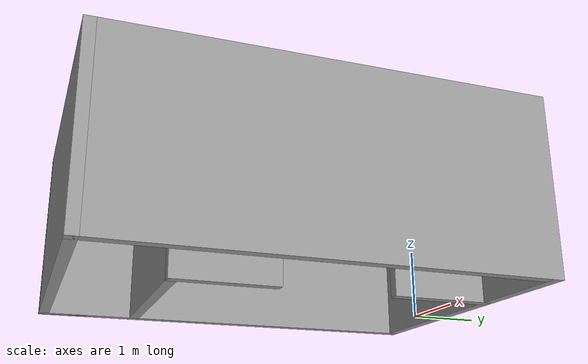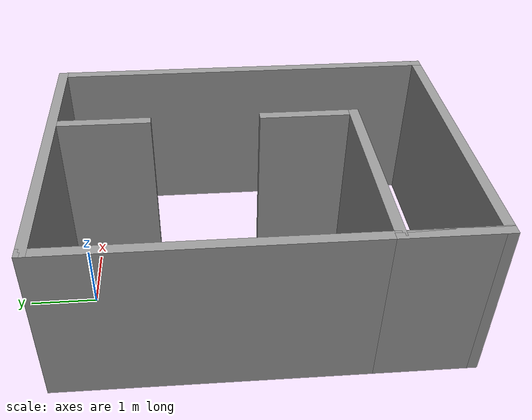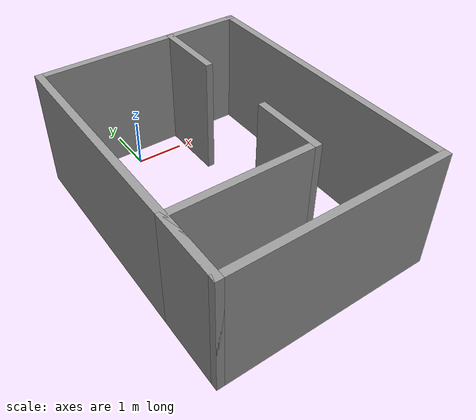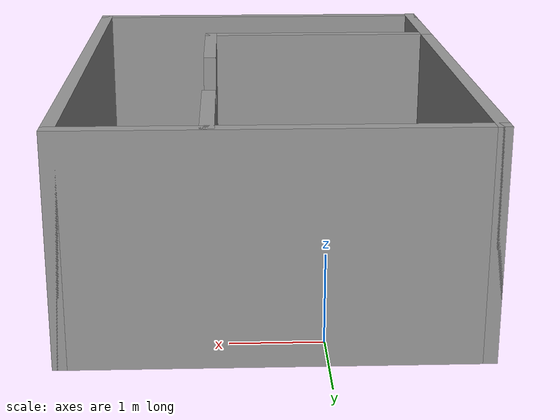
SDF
<?xml version='1.0'?>
<sdf version='1.6'>
  <model name='proj1_room'>
    <pose frame=''>0.530561 -2.47107 0 0 -0 0</pose>
    <link name='Wall_33'>
      <collision name='Wall_33_Collision'>
        <geometry>
          <box>
            <size>4.5 0.15 2.5</size>
          </box>
        </geometry>
        <pose frame=''>0 0 1.25 0 -0 0</pose>
      </collision>
      <visual name='Wall_33_Visual'>
        <pose frame=''>0 0 1.25 0 -0 0</pose>
        <geometry>
          <box>
            <size>4.5 0.15 2.5</size>
          </box>
        </geometry>
        <material>
          <script>
            <uri>file://media/materials/scripts/gazebo.material</uri>
            <name>Gazebo/Grey</name>
          </script>
          <ambient>0.333333 0.341176 0.32549 1</ambient>
        </material>
        <meta>
          <layer>0</layer>
        </meta>
      </visual>
      <pose frame=''>0 2.925 0 0 -0 0</pose>
    </link>
    <link name='Wall_41'>
      <collision name='Wall_41_Collision'>
        <geometry>
          <box>
            <size>6 0.15 2.5</size>
          </box>
        </geometry>
        <pose frame=''>0 0 1.25 0 -0 0</pose>
      </collision>
      <visual name='Wall_41_Visual'>
        <pose frame=''>0 0 1.25 0 -0 0</pose>
        <geometry>
          <box>
            <size>6 0.15 2.5</size>
          </box>
        </geometry>
        <material>
          <script>
            <uri>file://media/materials/scripts/gazebo.material</uri>
            <name>Gazebo/Grey</name>
          </script>
          <ambient>0.333333 0.341176 0.32549 1</ambient>
        </material>
        <meta>
          <layer>0</layer>
        </meta>
      </visual>
      <pose frame=''>2.175 0 0 0 -0 -1.5708</pose>
    </link>
    <link name='Wall_42'>
      <collision name='Wall_42_Collision'>
        <geometry>
          <box>
            <size>4.5 0.15 2.5</size>
          </box>
        </geometry>
        <pose frame=''>0 0 1.25 0 -0 0</pose>
      </collision>
      <visual name='Wall_42_Visual'>
        <pose frame=''>0 0 1.25 0 -0 0</pose>
        <geometry>
          <box>
            <size>4.5 0.15 2.5</size>
          </box>
        </geometry>
        <material>
          <script>
            <uri>file://media/materials/scripts/gazebo.material</uri>
            <name>Gazebo/Grey</name>
          </script>
          <ambient>0.333333 0.341176 0.32549 1</ambient>
        </material>
        <meta>
          <layer>0</layer>
        </meta>
      </visual>
      <pose frame=''>0 -2.925 0 0 -0 3.14159</pose>
    </link>
    <link name='Wall_43'>
      <collision name='Wall_43_Collision'>
        <geometry>
          <box>
            <size>6 0.15 2.5</size>
          </box>
        </geometry>
        <pose frame=''>0 0 1.25 0 -0 0</pose>
      </collision>
      <visual name='Wall_43_Visual'>
        <pose frame=''>0 0 1.25 0 -0 0</pose>
        <geometry>
          <box>
            <size>6 0.15 2.5</size>
          </box>
        </geometry>
        <material>
          <script>
            <uri>file://media/materials/scripts/gazebo.material</uri>
            <name>Gazebo/Grey</name>
          </script>
          <ambient>0.333333 0.341176 0.32549 1</ambient>
        </material>
        <meta>
          <layer>0</layer>
        </meta>
      </visual>
      <pose frame=''>-2.175 0 0 0 -0 1.5708</pose>
    </link>
    <link name='Wall_45'>
      <collision name='Wall_45_Collision'>
        <geometry>
          <box>
            <size>1.5 0.15 2.5</size>
          </box>
        </geometry>
        <pose frame=''>0 0 1.25 0 -0 0</pose>
      </collision>
      <visual name='Wall_45_Visual'>
        <pose frame=''>0 0 1.25 0 -0 0</pose>
        <geometry>
          <box>
            <size>1.5 0.15 2.5</size>
          </box>
        </geometry>
        <material>
          <script>
            <uri>file://media/materials/scripts/gazebo.material</uri>
            <name>Gazebo/Grey</name>
          </script>
          <ambient>0.333333 0.341176 0.32549 1</ambient>
        </material>
        <meta>
          <layer>0</layer>
        </meta>
      </visual>
      <pose frame=''>-2.175 -2.25 0 0 -0 1.5708</pose>
    </link>
    <link name='Wall_46'>
      <collision name='Wall_46_Collision'>
        <geometry>
          <box>
            <size>3 0.15 2.5</size>
          </box>
        </geometry>
        <pose frame=''>0 0 1.25 0 -0 0</pose>
      </collision>
      <visual name='Wall_46_Visual'>
        <pose frame=''>0 0 1.25 0 -0 0</pose>
        <geometry>
          <box>
            <size>3 0.15 2.5</size>
          </box>
        </geometry>
        <material>
          <script>
            <uri>file://media/materials/scripts/gazebo.material</uri>
            <name>Gazebo/Grey</name>
          </script>
          <ambient>0.333333 0.341176 0.32549 1</ambient>
        </material>
        <meta>
          <layer>0</layer>
        </meta>
      </visual>
      <pose frame=''>-0.75 -1.575 0 0 -0 0</pose>
    </link>
    <link name='Wall_47'>
      <collision name='Wall_47_Collision'>
        <geometry>
          <box>
            <size>1.5 0.15 2.5</size>
          </box>
        </geometry>
        <pose frame=''>0 0 1.25 0 -0 0</pose>
      </collision>
      <visual name='Wall_47_Visual'>
        <pose frame=''>0 0 1.25 0 -0 0</pose>
        <geometry>
          <box>
            <size>1.5 0.15 2.5</size>
          </box>
        </geometry>
        <material>
          <script>
            <uri>file://media/materials/scripts/gazebo.material</uri>
            <name>Gazebo/Grey</name>
          </script>
          <ambient>0.333333 0.341176 0.32549 1</ambient>
        </material>
        <meta>
          <layer>0</layer>
        </meta>
      </visual>
      <pose frame=''>0.675 -0.9 0 0 -0 1.5708</pose>
    </link>
    <link name='Wall_49'>
      <collision name='Wall_49_Collision'>
        <geometry>
          <box>
            <size>1.5 0.15 2.5</size>
          </box>
        </geometry>
        <pose frame=''>0 0 1.25 0 -0 0</pose>
      </collision>
      <visual name='Wall_49_Visual'>
        <pose frame=''>0 0 1.25 0 -0 0</pose>
        <geometry>
          <box>
            <size>1.5 0.15 2.5</size>
          </box>
        </geometry>
        <material>
          <script>
            <uri>file://media/materials/scripts/gazebo.material</uri>
            <name>Gazebo/Grey</name>
          </script>
          <ambient>0.333333 0.341176 0.32549 1</ambient>
        </material>
        <meta>
          <layer>0</layer>
        </meta>
      </visual>
      <pose frame=''>0.663976 2.22234 0 0 -0 -1.5708</pose>
    </link>
    <static>1</static>
  </model>
</sdf>
